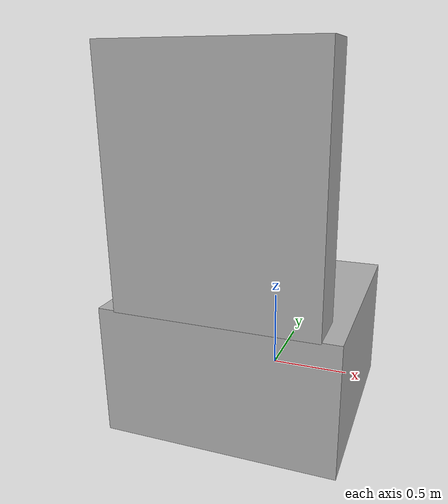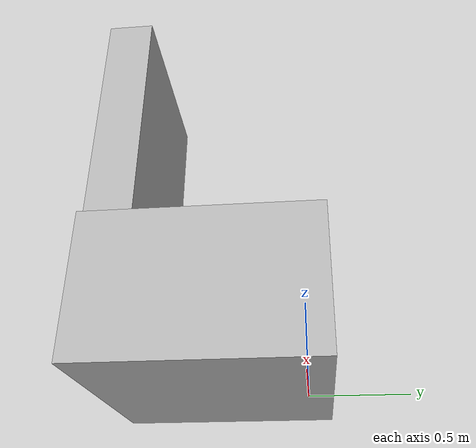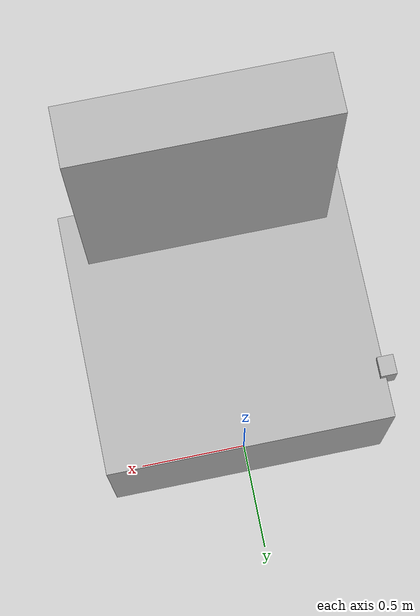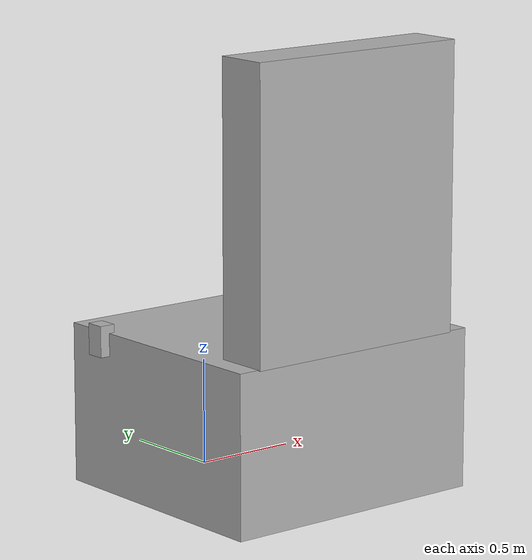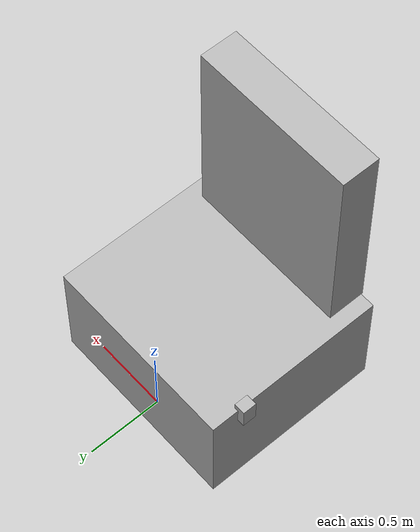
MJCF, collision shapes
<mujoco model="vention">
  <option integrator="implicitfast"/>

  <compiler angle="radian" meshdir="assets"/>

  <default>
    <default class="vention">
      <default class="visual">
        <geom type="mesh" group="2" contype="0" conaffinity="0"/>
      </default>
      <default class="collision">
        <geom type="mesh" group="3" rgba="0.7 0.7 0.7 0.9"/>
      </default>
    </default>
  </default>

  <asset>
    <material name="blue" rgba="0.05 0.05 0.9 1"/>
    <material name="red" rgba="1 0.072272 0.039546 1"/>

    <mesh file="vention_frame_visual_model.stl"/>
  </asset>

  <worldbody>
    <body name="vention_base" childclass="vention">
      <geom mesh="vention_frame_visual_model" material="blue" class="visual"/>

      <!-- Exact dimensions of the vention table are: x: 1.26, y: 1.12, z: 0.755 -->
      <!-- To add padding to the Vention table, increase the z-direction offset -->
      <geom type="box" pos="0 -0.475 0.3825" size="0.65 0.6 0.371" class="collision"/>
      <!-- Exact dimensions of the vention actuator frame are: x: 1.26, y: 0.18, z: 1.29 -->
      <geom type="box" pos="0 -0.96 1.41" size="0.55 0.125 0.66" class="collision"/>

      <!-- Collision for side box -->
      <geom name="box" class="collision" type="box" size="0.037 0.045 0.072" pos="-0.66 -0.1 0.72"/>

      <body name="left_arm_vention_base" pos="-0.330 -0.8480 1.620" quat="0.7071068 0 0.7071068 0">
        <geom type="box" size="0.1125 0.01 0.1125" mass="18.57" material="red"/>
        <!-- NOTE: uncomment this joint to use the linear rail -->
        <site name="left_arm_attachment_site" size="0.01" pos="0 0.01 0" quat="0.5 -0.5 -0.5 -0.5" rgba="0.5 0.5 0.5 0.3" group="4"/>
      </body>

  <!-- Rotated -90deg about Y (pitch): quat = [cos(45deg), 0, -sin(45deg), 0] -->
  <body name="right_arm_vention_base" pos="0.330 -0.8480 1.620" quat="0.7071068 0 0.7071068 0">
        <geom type="box" size="0.1125 0.01 0.1125" mass="18.57" material="red"/>
        <!-- NOTE: uncomment this joint to use the linear rail -->
        <site name="right_arm_attachment_site" size="0.01" pos="0 0.01 0" quat="0.5 -0.5 -0.5 -0.5" rgba="0.5 0.5 0.5 0.3" group="4"/>
      </body>
    </body>
  </worldbody>
</mujoco>
